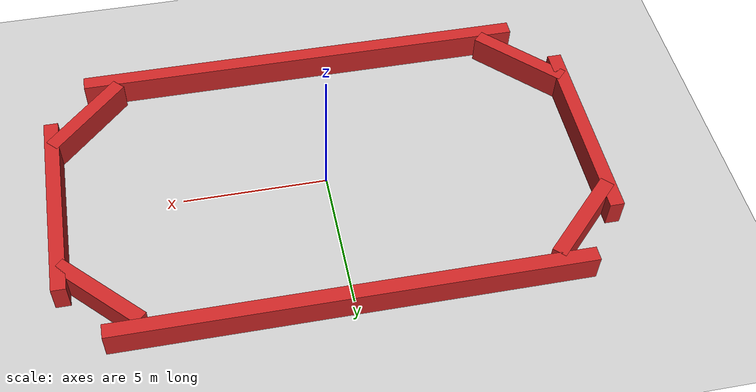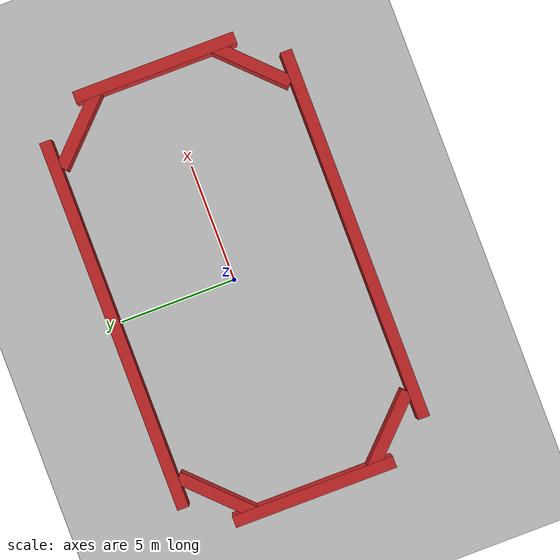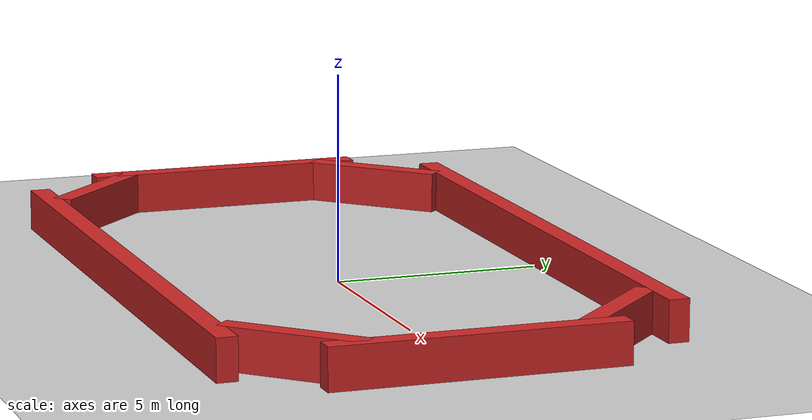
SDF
<?xml version="1.0" ?>
<sdf version="1.7">
  <world name="racetrack_world">
    <physics type="ode">
      <max_step_size>0.001</max_step_size>
      <real_time_factor>1</real_time_factor>
      <real_time_update_rate>1000</real_time_update_rate>
    </physics>
    <plugin
      filename="libgazebo_ros_init.so"
      name="gazebo_ros_init">
    </plugin>
    <plugin
      filename="libgazebo_ros_factory.so"
      name="gazebo_ros_factory">
    </plugin>

    <!-- Lighting -->
    <light name="sun" type="directional">
      <cast_shadows>true</cast_shadows>
      <pose>0 0 10 0 0 0</pose>
      <diffuse>0.8 0.8 0.8 1</diffuse>
      <specular>0.2 0.2 0.2 1</specular>
      <attenuation>
        <range>1000</range>
        <constant>0.9</constant>
        <linear>0.01</linear>
        <quadratic>0.001</quadratic>
      </attenuation>
      <direction>-0.5 0.1 -0.9</direction>
    </light>

    <!-- Ground Plane -->
    <model name="ground_plane">
      <static>true</static>
      <link name="link">
        <collision name="collision">
          <geometry>
            <plane>
              <normal>0 0 1</normal>
              <size>100 100</size>
            </plane>
          </geometry>
          <surface>
            <friction>
              <ode>
                <mu>100</mu>
                <mu2>50</mu2>
              </ode>
            </friction>
          </surface>
        </collision>
        <visual name="visual">
          <cast_shadows>false</cast_shadows>
          <geometry>
            <plane>
              <normal>0 0 1</normal>
              <size>100 100</size>
            </plane>
          </geometry>
          <material>
            <script>
              <uri>file://media/materials/scripts/gazebo.material</uri>
              <name>Gazebo/Grey</name>
            </script>
          </material>
        </visual>
      </link>
    </model>

    <!-- Racetrack Walls -->
    <model name="racetrack">
      <static>true</static>
      <pose>0 0 0 0 0 0</pose> <!-- Overall pose of the track model -->

      <!-- Define track dimensions -->
      <!-- Inner dimensions of the track path -->
      <!-- Let's say track is 20m long, 10m wide internally -->
      <!-- Wall thickness 0.5m, height 1m -->
      <!-- Corner "cut-off" length (hypotenuse of the corner triangle) approx 2m -->

      <!-- Wall parameters -->
      <link name="wall_straight_1">
        <pose>0 5.25 0.5 0 0 0</pose>
        <collision name="collision">
          <geometry><box><size>16 0.5 1</size></box></geometry>
        </collision>
        <visual name="visual">
          <geometry><box><size>16 0.5 1</size></box></geometry>
          <material><script><uri>file://media/materials/scripts/gazebo.material</uri><name>Gazebo/Red</name></script></material>
        </visual>
      </link>

      <link name="wall_straight_2">
        <pose>0 -5.25 0.5 0 0 0</pose>
        <collision name="collision">
          <geometry><box><size>16 0.5 1</size></box></geometry>
        </collision>
        <visual name="visual">
          <geometry><box><size>16 0.5 1</size></box></geometry>
          <material><script><uri>file://media/materials/scripts/gazebo.material</uri><name>Gazebo/Red</name></script></material>
        </visual>
      </link>

      <link name="wall_straight_3">
        <pose>9.25 0 0.5 0 0 1.5707</pose> <!-- x = (16/2) + (0.5/2) + adjust for corner, rotate 90 deg -->
        <collision name="collision">
          <geometry><box><size>7 0.5 1</size></box></geometry>
        </collision>
        <visual name="visual">
          <geometry><box><size>7 0.5 1</size></box></geometry>
          <material><script><uri>file://media/materials/scripts/gazebo.material</uri><name>Gazebo/Red</name></script></material>
        </visual>
      </link>

      <link name="wall_straight_4">
        <pose>-9.25 0 0.5 0 0 1.5707</pose> <!-- x = -(16/2) - (0.5/2) + adjust for corner, rotate 90 deg -->
        <collision name="collision">
          <geometry><box><size>7 0.5 1</size></box></geometry>
        </collision>
        <visual name="visual">
          <geometry><box><size>7 0.5 1</size></box></geometry>
          <material><script><uri>file://media/materials/scripts/gazebo.material</uri><name>Gazebo/Red</name></script></material>
        </visual>
      </link>

      <!-- Corner Walls (approximating smoothed edges) -->
      <!-- Length of corner wall segment approx 3.53m (hypotenuse for a 2.5x2.5 cut) -->
      <!-- Center of corner wall segment is at ~ +/-8m, +/-3.75m with 45 deg rotation -->
      <link name="corner_1"> <!-- Top-Right -->
        <pose>8.0 3.75 0.5 0 0 -0.785398</pose> <!-- 45 degrees = pi/4 = 0.785398 rad -->
        <collision name="collision">
          <geometry><box><size>3.53 0.5 1</size></box></geometry>
        </collision>
        <visual name="visual">
          <geometry><box><size>3.53 0.5 1</size></box></geometry>
          <material><script><uri>file://media/materials/scripts/gazebo.material</uri><name>Gazebo/Red</name></script></material>
        </visual>
      </link>

      <link name="corner_2"> <!-- Top-Left -->
        <pose>-8.0 3.75 0.5 0 0 0.785398</pose>
        <collision name="collision">
          <geometry><box><size>3.53 0.5 1</size></box></geometry>
        </collision>
        <visual name="visual">
          <geometry><box><size>3.53 0.5 1</size></box></geometry>
          <material><script><uri>file://media/materials/scripts/gazebo.material</uri><name>Gazebo/Red</name></script></material>
        </visual>
      </link>

      <link name="corner_3"> <!-- Bottom-Left -->
        <pose>-8.0 -3.75 0.5 0 0 -0.785398</pose> <!-- Rotated by -45 deg from straight segment, then placed -->
        <collision name="collision">
          <geometry><box><size>3.53 0.5 1</size></box></geometry>
        </collision>
        <visual name="visual">
          <geometry><box><size>3.53 0.5 1</size></box></geometry>
          <material><script><uri>file://media/materials/scripts/gazebo.material</uri><name>Gazebo/Red</name></script></material>
        </visual>
      </link>

      <link name="corner_4"> <!-- Bottom-Right -->
        <pose>8.0 -3.75 0.5 0 0 0.785398</pose> <!-- Rotated by 45 deg from straight segment, then placed -->
        <collision name="collision">
          <geometry><box><size>3.53 0.5 1</size></box></geometry>
        </collision>
        <visual name="visual">
          <geometry><box><size>3.53 0.5 1</size></box></geometry>
          <material><script><uri>file://media/materials/scripts/gazebo.material</uri><name>Gazebo/Red</name></script></material>
        </visual>
      </link>

    </model>
  </world>
</sdf>
